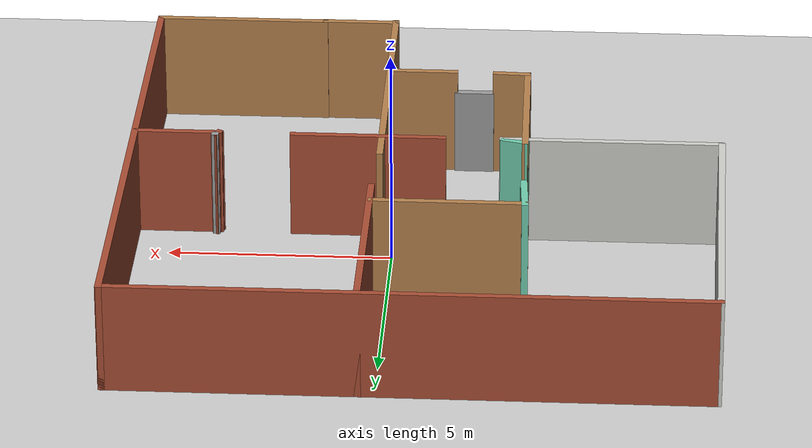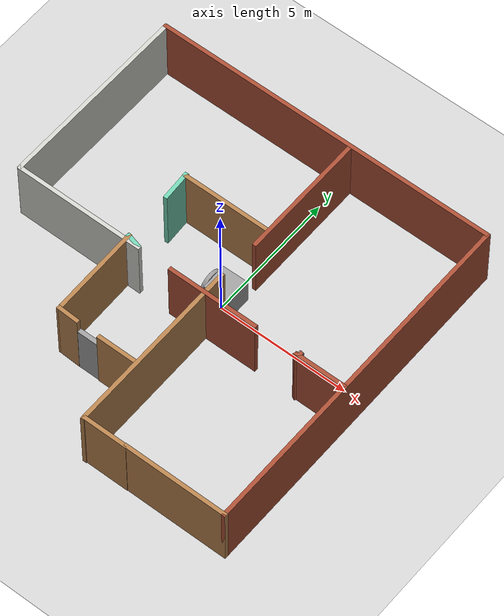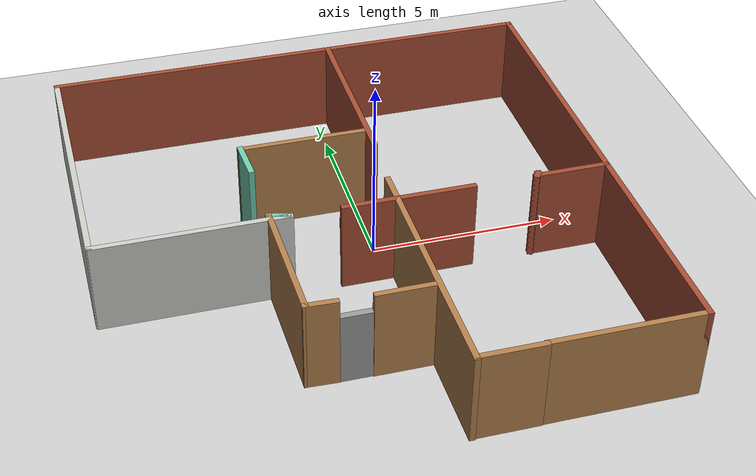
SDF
<sdf version="1.7">
 <world name="default">
  <light name="sun" type="directional">
   <pose>0 0 10 0 -0 0</pose>
   <diffuse>0.8 0.8 0.8 1</diffuse>
   <specular>0.2 0.2 0.2 1</specular>
   <attenuation>
    <range>1000</range>
    <constant>0.9</constant>
    <linear>0.01</linear>
    <quadratic>0.001</quadratic>
   </attenuation>
   <direction>-0.5 0.1 -0.9</direction>
   <spot><inner_angle>0</inner_angle><outer_angle>0</outer_angle><falloff>0</falloff></spot>
  </light>
  <model name="ground_plane">
   <static>1</static>
   <link name="link">
    <collision name="collision">
     <geometry><plane><normal>0 0 1</normal><size>100 100</size></plane></geometry>
     <surface>
      <contact><collide_bitmask>65535</collide_bitmask></contact>
      <friction><ode><mu>100</mu><mu2>50</mu2></ode></friction>
     </surface>
    </collision>
    <visual name="visual">
     <cast_shadows>0</cast_shadows>
     <geometry><plane><normal>0 0 1</normal><size>100 100</size></plane></geometry>
     <material>
      <script><uri>file://media/materials/scripts/gazebo.material</uri><name>Gazebo/Grey</name></script>
     </material>
    </visual>
   </link>
  </model>
  <gravity>0 0 -9.8</gravity>
  <magnetic_field>6e-06 2.3e-05 -4.2e-05</magnetic_field>
  <atmosphere type="adiabatic"/>
  <physics type="ode">
   <max_step_size>0.001</max_step_size>
   <real_time_factor>1</real_time_factor>
   <real_time_update_rate>1000</real_time_update_rate>
  </physics>
  <scene><ambient>0.4 0.4 0.4 1</ambient><background>0.7 0.7 0.7 1</background><shadows>1</shadows></scene>
  <spherical_coordinates>
   <surface_model>EARTH_WGS84</surface_model>
   <latitude_deg>0</latitude_deg>
   <longitude_deg>0</longitude_deg>
   <elevation>0</elevation>
   <heading_deg>0</heading_deg>
  </spherical_coordinates>
  <model name="simple_model">
   <link name="link_0">
    <inertial>
     <mass>1</mass>
     <inertia>
      <ixx>0.166667</ixx>
      <ixy>0</ixy>
      <ixz>0</ixz>
      <iyy>0.166667</iyy>
      <iyz>0</iyz>
      <izz>0.166667</izz>
     </inertia>
    </inertial>
    <pose>0.3 0 0 0 -0 0</pose>
    <visual name="visual">
     <geometry><box><size>1 1 1</size></box></geometry>
     <material>
      <lighting>1</lighting>
      <script><uri>file://media/materials/scripts/gazebo.material</uri><name>Gazebo/Grey</name></script>
      <shader type="pixel"><normal_map>__default__</normal_map></shader>
      <ambient>0.3 0.3 0.3 1</ambient>
      <diffuse>0.7 0.7 0.7 1</diffuse>
      <specular>0.01 0.01 0.01 1</specular>
      <emissive>0 0 0 1</emissive>
     </material>
    </visual>
    <collision name="collision">
     <geometry><box><size>1 1 1</size></box></geometry>
     <surface>
      <friction>
       <ode><mu>1</mu><mu2>1</mu2><fdir1>0 0 0</fdir1><slip1>0</slip1><slip2>0</slip2></ode>
       <torsional>
        <coefficient>1</coefficient>
        <patch_radius>0</patch_radius>
        <surface_radius>0</surface_radius>
        <use_patch_radius>1</use_patch_radius>
        <ode><slip>0</slip></ode>
       </torsional>
      </friction>
      <bounce><restitution_coefficient>0</restitution_coefficient><threshold>1e+06</threshold></bounce>
      <contact>
       <collide_without_contact>0</collide_without_contact>
       <collide_without_contact_bitmask>1</collide_without_contact_bitmask>
       <collide_bitmask>1</collide_bitmask>
       <ode>
        <soft_cfm>0</soft_cfm>
        <soft_erp>0.2</soft_erp>
        <kp>1e+13</kp>
        <kd>1</kd>
        <max_vel>0.01</max_vel>
        <min_depth>0</min_depth>
       </ode>
       <bullet>
        <split_impulse>1</split_impulse>
        <split_impulse_penetration_threshold>-0.01</split_impulse_penetration_threshold>
        <soft_cfm>0</soft_cfm>
        <soft_erp>0.2</soft_erp>
        <kp>1e+13</kp>
        <kd>1</kd>
       </bullet>
      </contact>
     </surface>
    </collision>
   </link>
   <link name="link_2">
    <inertial>
     <mass>0.140803</mass>
     <inertia>
      <ixx>0.00903278</ixx>
      <ixy>0</ixy>
      <ixz>0</ixz>
      <iyy>0.00903278</iyy>
      <iyz>0</iyz>
      <izz>0.0176003</izz>
     </inertia>
    </inertial>
    <pose>-0.3 0 0 -3.14159 1.57079 -3.14159</pose>
    <visual name="visual">
     <geometry><cylinder><radius>0.5</radius><length>0.140804</length></cylinder></geometry>
     <material>
      <lighting>1</lighting>
      <script><uri>file://media/materials/scripts/gazebo.material</uri><name>Gazebo/Grey</name></script>
      <shader type="pixel"><normal_map>__default__</normal_map></shader>
      <ambient>0.3 0.3 0.3 1</ambient>
      <diffuse>0.7 0.7 0.7 1</diffuse>
      <specular>0.01 0.01 0.01 1</specular>
      <emissive>0 0 0 1</emissive>
     </material>
    </visual>
    <collision name="collision">
     <geometry><cylinder><radius>0.5</radius><length>0.140804</length></cylinder></geometry>
     <surface>
      <friction>
       <ode><mu>1</mu><mu2>1</mu2><fdir1>0 0 0</fdir1><slip1>0</slip1><slip2>0</slip2></ode>
       <torsional>
        <coefficient>1</coefficient>
        <patch_radius>0</patch_radius>
        <surface_radius>0</surface_radius>
        <use_patch_radius>1</use_patch_radius>
        <ode><slip>0</slip></ode>
       </torsional>
      </friction>
      <bounce><restitution_coefficient>0</restitution_coefficient><threshold>1e+06</threshold></bounce>
      <contact>
       <collide_without_contact>0</collide_without_contact>
       <collide_without_contact_bitmask>1</collide_without_contact_bitmask>
       <collide_bitmask>1</collide_bitmask>
       <ode>
        <soft_cfm>0</soft_cfm>
        <soft_erp>0.2</soft_erp>
        <kp>1e+13</kp>
        <kd>1</kd>
        <max_vel>0.01</max_vel>
        <min_depth>0</min_depth>
       </ode>
       <bullet>
        <split_impulse>1</split_impulse>
        <split_impulse_penetration_threshold>-0.01</split_impulse_penetration_threshold>
        <soft_cfm>0</soft_cfm>
        <soft_erp>0.2</soft_erp>
        <kp>1e+13</kp>
        <kd>1</kd>
       </bullet>
      </contact>
     </surface>
    </collision>
   </link>
   <joint name="link_0_JOINT_0" type="revolute">
    <parent>link_0</parent>
    <child>link_2</child>
    <axis>
     <xyz>0 0 1</xyz>
     <limit>
      <lower>-1.79769e+308</lower>
      <upper>1.79769e+308</upper>
      <effort>-1</effort>
      <velocity>-1</velocity>
     </limit>
     <dynamics>
      <spring_reference>0</spring_reference>
      <spring_stiffness>0</spring_stiffness>
      <damping>0</damping>
      <friction>0</friction>
     </dynamics>
    </axis>
    <physics>
     <ode><limit><cfm>0</cfm><erp>0.2</erp></limit><suspension><cfm>0</cfm><erp>0.2</erp></suspension></ode>
    </physics>
   </joint>
   <static>0</static>
   <pose>-0.333159 0.273463 0.5 0 -0 0.011248</pose>
  </model>
  <model name="flat1">
   <pose>-0.748807 -0.447079 0 0 -0 0</pose>
   <link name="Door_0">
    <collision name="Door_0_Collision">
     <geometry><box><size>0.9 0.17 2</size></box></geometry>
     <pose>0 0 1 0 -0 0</pose>
    </collision>
    <visual name="Door_0_Visual">
     <pose>0 0 1 0 -0 0</pose>
     <geometry><box><size>0.9 0.17 2</size></box></geometry>
     <material>
      <script><uri>file://media/materials/scripts/gazebo.material</uri><name>Gazebo/Grey</name></script>
     </material>
    </visual>
    <pose>-0.905945 -3.98046 0 0 -0 0</pose>
   </link>
   <link name="Wall_1">
    <collision name="Wall_1_Collision">
     <geometry><box><size>13.25 0.15 2.5</size></box></geometry>
     <pose>0 0 1.25 0 -0 0</pose>
    </collision>
    <visual name="Wall_1_Visual">
     <pose>0 0 1.25 0 -0 0</pose>
     <geometry><box><size>13.25 0.15 2.5</size></box></geometry>
     <material>
      <script><uri>file://media/materials/scripts/gazebo.material</uri><name>Gazebo/Bricks</name></script>
      <ambient>1 1 1 1</ambient>
     </material>
     <meta><layer>0</layer></meta>
    </visual>
    <pose>0.015453 6.57317 0 0 -0 0</pose>
   </link>
   <link name="Wall_11">
    <collision name="Wall_11_Collision">
     <geometry><box><size>1.18535 0.15 2.5</size></box></geometry>
     <pose>0 0 1.25 0 -0 0</pose>
    </collision>
    <visual name="Wall_11_Visual">
     <pose>0 0 1.25 0 -0 0</pose>
     <geometry><box><size>1.18535 0.15 2.5</size></box></geometry>
     <material>
      <script><uri>file://media/materials/scripts/gazebo.material</uri><name>Gazebo/Grey</name></script>
      <ambient>0.435294 0.796078 0.67451 1</ambient>
     </material>
     <meta><layer>0</layer></meta>
    </visual>
    <pose>-2.25191 1.8896 0 0 -0 1.62992</pose>
   </link>
   <link name="Wall_12">
    <collision name="Wall_12_Collision">
     <geometry><box><size>3.5 0.15 2.5</size></box></geometry>
     <pose>0 0 1.25 0 -0 0</pose>
    </collision>
    <visual name="Wall_12_Visual">
     <pose>0 0 1.25 0 -0 0</pose>
     <geometry><box><size>3.5 0.15 2.5</size></box></geometry>
     <material>
      <script><uri>file://media/materials/scripts/gazebo.material</uri><name>Gazebo/Wood</name></script>
      <ambient>1 1 1 1</ambient>
     </material>
     <meta><layer>0</layer></meta>
    </visual>
    <pose>-0.607505 2.37578 0 0 -0 0</pose>
   </link>
   <link name="Wall_14">
    <collision name="Wall_14_Collision">
     <geometry><box><size>7.37243 0.15 2.5</size></box></geometry>
     <pose>0 0 1.25 0 -0 0</pose>
    </collision>
    <visual name="Wall_14_Visual">
     <pose>0 0 1.25 0 -0 0</pose>
     <geometry><box><size>7.37243 0.15 2.5</size></box></geometry>
     <material>
      <script><uri>file://media/materials/scripts/gazebo.material</uri><name>Gazebo/CeilingTiled</name></script>
      <ambient>1 1 1 1</ambient>
     </material>
     <meta><layer>0</layer></meta>
    </visual>
    <pose>-6.54984 2.96199 0 0 -0 -1.57503</pose>
   </link>
   <link name="Wall_16">
    <collision name="Wall_16_Collision">
     <geometry><box><size>5 0.15 2.5</size></box></geometry>
     <pose>0 0 1.25 0 -0 0</pose>
    </collision>
    <visual name="Wall_16_Visual">
     <pose>0 0 1.25 0 -0 0</pose>
     <geometry><box><size>5 0.15 2.5</size></box></geometry>
     <material>
      <script><uri>file://media/materials/scripts/gazebo.material</uri><name>Gazebo/CeilingTiled</name></script>
      <ambient>1 1 1 1</ambient>
     </material>
     <meta><layer>0</layer></meta>
    </visual>
    <pose>-4.10955 -0.679785 0 0 -0 0</pose>
   </link>
   <link name="Wall_17">
    <collision name="Wall_17_Collision">
     <geometry><box><size>0.637952 0.15 2.5</size></box></geometry>
     <pose>0 0 1.25 0 -0 0</pose>
    </collision>
    <visual name="Wall_17_Visual">
     <pose>0 0 1.25 0 -0 0</pose>
     <geometry><box><size>0.637952 0.15 2.5</size></box></geometry>
     <material>
      <script><uri>file://media/materials/scripts/gazebo.material</uri><name>Gazebo/Grey</name></script>
      <ambient>0.435294 0.796078 0.67451 1</ambient>
     </material>
     <meta><layer>0</layer></meta>
    </visual>
    <pose>-1.95132 -0.588014 0 0 -0 2.88812</pose>
   </link>
   <link name="Wall_18">
    <collision name="Wall_18_Collision">
     <geometry><box><size>3.58704 0.15 2.5</size></box></geometry>
     <pose>0 0 1.25 0 -0 0</pose>
    </collision>
    <visual name="Wall_18_Visual">
     <pose>0 0 1.25 0 -0 0</pose>
     <geometry><box><size>3.58704 0.15 2.5</size></box></geometry>
     <material>
      <script><uri>file://media/materials/scripts/gazebo.material</uri><name>Gazebo/Wood</name></script>
      <ambient>1 1 1 1</ambient>
     </material>
     <meta><layer>0</layer></meta>
    </visual>
    <pose>-2.15691 -2.24508 0 0 -0 -1.55299</pose>
   </link>
   <link name="Wall_19">
    <collision name="Wall_19_Collision">
     <geometry><box><size>0.873008 0.15 2.5</size></box></geometry>
     <pose>0 0 1.25 0 -0 0</pose>
    </collision>
    <visual name="Wall_19_Visual">
     <pose>0 0 1.25 0 -0 0</pose>
     <geometry><box><size>0.873008 0.15 2.5</size></box></geometry>
     <material>
      <script><uri>file://media/materials/scripts/gazebo.material</uri><name>Gazebo/Wood</name></script>
      <ambient>1 1 1 1</ambient>
     </material>
     <meta><layer>0</layer></meta>
    </visual>
    <pose>-1.76514 -3.97862 0 0 -0 -0.042322</pose>
   </link>
   <link name="Wall_2">
    <collision name="Wall_2_Collision">
     <geometry><box><size>13.25 0.15 2.5</size></box></geometry>
     <pose>0 0 1.25 0 -0 0</pose>
    </collision>
    <visual name="Wall_2_Visual">
     <pose>0 0 1.25 0 -0 0</pose>
     <geometry><box><size>13.25 0.15 2.5</size></box></geometry>
     <material>
      <script><uri>file://media/materials/scripts/gazebo.material</uri><name>Gazebo/Bricks</name></script>
      <ambient>1 1 1 1</ambient>
     </material>
     <meta><layer>0</layer></meta>
    </visual>
    <pose>6.56545 0.023166 0 0 -0 -1.5708</pose>
   </link>
   <link name="Wall_21">
    <collision name="Wall_21_Collision">
     <geometry><box><size>3.5 0.15 2.5</size></box></geometry>
     <pose>0 0 1.25 0 -0 0</pose>
    </collision>
    <visual name="Wall_21_Visual">
     <pose>0 0 1.25 0 -0 0</pose>
     <geometry><box><size>3.5 0.15 2.5</size></box></geometry>
     <material>
      <script><uri>file://media/materials/scripts/gazebo.material</uri><name>Gazebo/Bricks</name></script>
      <ambient>1 1 1 1</ambient>
     </material>
     <meta><layer>0</layer></meta>
    </visual>
    <pose>1.33461 -0.676718 0 0 -0 3.14159</pose>
   </link>
   <link name="Wall_24">
    <collision name="Wall_24_Collision">
     <geometry><box><size>6.87243 0.15 2.5</size></box></geometry>
     <pose>0 0 1.25 0 -0 0</pose>
    </collision>
    <visual name="Wall_24_Visual">
     <pose>0 0 1.25 0 -0 0</pose>
     <geometry><box><size>6.87243 0.15 2.5</size></box></geometry>
     <material>
      <script><uri>file://media/materials/scripts/gazebo.material</uri><name>Gazebo/Wood</name></script>
      <ambient>1 1 1 1</ambient>
     </material>
     <meta><layer>0</layer></meta>
    </visual>
    <pose>1.03653 -3.21196 0 0 -0 -1.56625</pose>
   </link>
   <link name="Wall_25">
    <collision name="Wall_25_Collision">
     <geometry><box><size>1.75 0.15 2.5</size></box></geometry>
     <pose>0 0 1.25 0 -0 0</pose>
    </collision>
    <visual name="Wall_25_Visual">
     <pose>0 0 1.25 0 -0 0</pose>
     <geometry><box><size>1.75 0.15 2.5</size></box></geometry>
     <material>
      <script><uri>file://media/materials/scripts/gazebo.material</uri><name>Gazebo/Wood</name></script>
      <ambient>1 1 1 1</ambient>
     </material>
     <meta><layer>0</layer></meta>
    </visual>
    <pose>1.88242 -6.54255 0 0 -0 0</pose>
   </link>
   <link name="Wall_28">
    <collision name="Wall_28_Collision">
     <geometry><box><size>1.5 0.15 2.5</size></box></geometry>
     <pose>0 0 1.25 0 -0 0</pose>
    </collision>
    <visual name="Wall_28_Visual">
     <pose>0 0 1.25 0 -0 0</pose>
     <geometry><box><size>1.5 0.15 2.5</size></box></geometry>
     <material>
      <script><uri>file://media/materials/scripts/gazebo.material</uri><name>Gazebo/Wood</name></script>
      <ambient>1 1 1 1</ambient>
     </material>
     <meta><layer>0</layer></meta>
    </visual>
    <pose>0.223879 -4.01105 0 0 -0 3.14159</pose>
   </link>
   <link name="Wall_3">
    <collision name="Wall_3_Collision">
     <geometry><box><size>4 0.15 2.5</size></box></geometry>
     <pose>0 0 1.25 0 -0 0</pose>
    </collision>
    <visual name="Wall_3_Visual">
     <pose>0 0 1.25 0 -0 0</pose>
     <geometry><box><size>4 0.15 2.5</size></box></geometry>
     <material>
      <script><uri>file://media/materials/scripts/gazebo.material</uri><name>Gazebo/Wood</name></script>
      <ambient>1 1 1 1</ambient>
     </material>
     <meta><layer>0</layer></meta>
    </visual>
    <pose>4.64045 -6.52683 0 0 -0 3.14159</pose>
   </link>
   <link name="Wall_5">
    <collision name="Wall_5_Collision">
     <geometry><box><size>2 0.15 2.5</size></box></geometry>
     <pose>0 0 1.25 0 -0 0</pose>
    </collision>
    <visual name="Wall_5_Visual">
     <pose>0 0 1.25 0 -0 0</pose>
     <geometry><box><size>2 0.15 2.5</size></box></geometry>
     <material>
      <script><uri>file://media/materials/scripts/gazebo.material</uri><name>Gazebo/Bricks</name></script>
      <ambient>1 1 1 1</ambient>
     </material>
     <meta><layer>0</layer></meta>
    </visual>
    <pose>5.60248 -0.676718 0 0 -0 3.14159</pose>
   </link>
   <link name="Wall_6">
    <collision name="Wall_6_Collision">
     <geometry><box><size>0.291559 0.15 2.5</size></box></geometry>
     <pose>0 0 1.25 0 -0 0</pose>
    </collision>
    <visual name="Wall_6_Visual">
     <pose>0 0 1.25 0 -0 0</pose>
     <geometry><box><size>0.291559 0.15 2.5</size></box></geometry>
     <material>
      <script><uri>file://media/materials/scripts/gazebo.material</uri><name>Gazebo/Bricks</name></script>
      <ambient>1 1 1 1</ambient>
     </material>
     <meta><layer>0</layer></meta>
    </visual>
    <pose>4.71307 -0.646128 0 0 -0 1.04392</pose>
   </link>
   <link name="Wall_7">
    <collision name="Wall_7_Collision">
     <geometry><box><size>0.16 0.15 2.5</size></box></geometry>
     <pose>0 0 1.25 0 -0 0</pose>
    </collision>
    <visual name="Wall_7_Visual">
     <pose>0 0 1.25 0 -0 0</pose>
     <geometry><box><size>0.16 0.15 2.5</size></box></geometry>
     <material>
      <script><uri>file://media/materials/scripts/gazebo.material</uri><name>Gazebo/Grey</name></script>
      <ambient>1 1 1 1</ambient>
     </material>
     <meta><layer>0</layer></meta>
    </visual>
    <pose>4.75366 -0.584947 0 0 -0 0</pose>
   </link>
   <link name="Wall_9">
    <collision name="Wall_9_Collision">
     <geometry><box><size>5 0.15 2.5</size></box></geometry>
     <pose>0 0 1.25 0 -0 0</pose>
    </collision>
    <visual name="Wall_9_Visual">
     <pose>0 0 1.25 0 -0 0</pose>
     <geometry><box><size>5 0.15 2.5</size></box></geometry>
     <material>
      <script><uri>file://media/materials/scripts/gazebo.material</uri><name>Gazebo/Bricks</name></script>
      <ambient>1 1 1 1</ambient>
     </material>
     <meta><layer>0</layer></meta>
    </visual>
    <pose>1.11301 4.14817 0 0 -0 -1.5708</pose>
   </link>
   <static>1</static>
  </model>
 </world>
</sdf>
